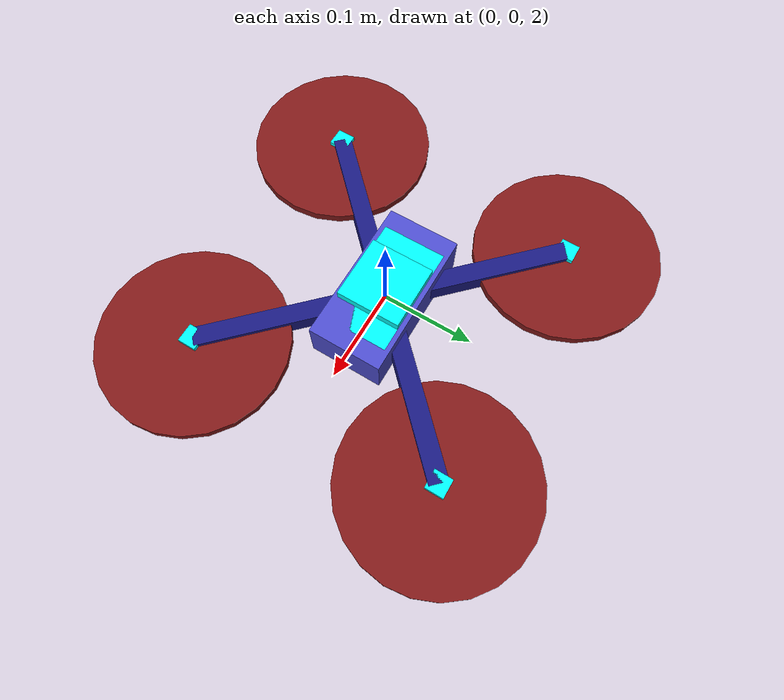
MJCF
<mujoco model="Quadrotor">
  <compiler angle="degree" coordinate="local" inertiafromgeom="false" />
  <visual>
    <map fogstart="3.0" fogend="5.0" force="0.1" znear="0.1" />
  </visual>
  <asset>
    <texture type="skybox" builtin="gradient" rgb1="1.0 1.0 1.0" rgb2="0.6 0.8 1.0" width="256" height="256" />
  </asset>
  <worldbody>
    <geom name="ground" type="plane" size="5.0 5.0 0.02" friction="1.0" pos="0.0 0.0 0.0" rgba="0.8 0.9 0.8 1.0" />
    <light directional="true" diffuse=".9 .9 .9" specular=".3 .3 .3" pos="0 0 4.0" dir="0 0.15 -1" />
    <body name="quadrotor" pos="0.0 0.0 2.0" quat="1 0 0 0">
      <geom name="quadrotor_geom" type="box" pos="0.0 0.0 0.0" quat="1 0 0 0" size="0.08 0.04 0.025" mass="0.75" density="1000" rgba="0.3 0.3 0.8 1.0" />
      <joint name="quadrotor_root_joint" type="free" />
      <inertial pos="0. 0. 0." mass="0.75" diaginertia="0.0053 0.0049 0.0098" />
      <geom name="quadrotor_rotor_arm_geom_0" type="box" pos="0.0 0.0 0.0" quat="0.92388 0 0 0.382683" size="0.2 0.01 0.01" mass="0.01" density="1000" rgba="0.1 0.1 0.5 1.0" />
      <geom name="quadrotor_rotor_prop_geom_0" type="cylinder" size="0.1 0.005" pos="0.1414213562373095 0.14142135623730953 0.0" mass="0.05" density="1000" rgba="0.5 0.1 0.1 1.0" />
      <geom name="quadrotor_rotor_arm_geom_1" type="box" pos="0.0 0.0 0.0" quat="0.382683 0 0 0.92388" size="0.2 0.01 0.01" mass="0.01" density="1000" rgba="0.1 0.1 0.5 1.0" />
      <geom name="quadrotor_rotor_prop_geom_1" type="cylinder" size="0.1 0.005" pos="-0.1414213562373095 0.14142135623730953 0.0" mass="0.05" density="1000" rgba="0.5 0.1 0.1 1.0" />
      <geom name="quadrotor_rotor_arm_geom_2" type="box" pos="0.0 0.0 0.0" quat="-0.382683 0 0 0.92388" size="0.2 0.01 0.01" mass="0.01" density="1000" rgba="0.1 0.1 0.5 1.0" />
      <geom name="quadrotor_rotor_prop_geom_2" type="cylinder" size="0.1 0.005" pos="-0.1414213562373095 -0.1414213562373095 0.0" mass="0.05" density="1000" rgba="0.5 0.1 0.1 1.0" />
      <geom name="quadrotor_rotor_arm_geom_3" type="box" pos="0.0 0.0 0.0" quat="-0.92388 0 0 0.382683" size="0.2 0.01 0.01" mass="0.01" density="1000" rgba="0.1 0.1 0.5 1.0" />
      <geom name="quadrotor_rotor_prop_geom_3" type="cylinder" size="0.1 0.005" pos="0.14142135623730948 -0.14142135623730956 0.0" mass="0.05" density="1000" rgba="0.5 0.1 0.1 1.0" />
      <site name="site0" type="box" pos="0.1414213562373095 0.14142135623730953 0.0" quat="1 0 0 0" size="0.01 0.01 0.01" rgba="0.0 1 1 1.0" />
      <site name="site1" type="box" pos="-0.1414213562373095 0.14142135623730953 0.0" quat="1 0 0 0" size="0.01 0.01 0.01" rgba="0.0 1 1 1.0" />
      <site name="site2" type="box" pos="-0.1414213562373095 -0.1414213562373095 0.0" quat="1 0 0 0" size="0.01 0.01 0.01" rgba="0.0 1 1 1.0" />
      <site name="site3" type="box" pos="0.14142135623730948 -0.14142135623730956 0.0" quat="1 0 0 0" size="0.01 0.01 0.01" rgba="0.0 1 1 1.0" />
      <site name="quadrotor_thrust" type="box" pos="0.0 0.0 0.0" quat="1 0 0 0" size="0.035 0.035 0.035" rgba="0.0 1 1 1.0" />
      <site name="quadrotor_Mx" type="box" pos="0.0 0.0 0.0" quat="1 0 0 0" size="0.06 0.035 0.025" rgba="0.0 1 1 1.0" />
      <site name="quadrotor_My" type="box" pos="0.0 0.0 0.0" quat="1 0 0 0" size="0.06 0.035 0.025" rgba="0.0 1 1 1.0" />
      <site name="quadrotor_Mz" type="box" pos="0.0 0.0 0.0" quat="1 0 0 0" size="0.06 0.035 0.025" rgba="0.0 1 1 1.0" />
    </body>
  </worldbody>
  <actuator>
    <motor ctrllimited="true" site="site0" ctrlrange="0.0 10.0" gear="0. 0. 1. 0. 0. -.024994577607878814" /> # each propeller can generate a force of 10N
    <motor ctrllimited="true" site="site1" ctrlrange="0.0 10.0" gear="0. 0. 1. 0. 0. .024994577607878814" />
    <motor ctrllimited="true" site="site2" ctrlrange="0.0 10.0" gear="0. 0. 1. 0. 0. -.024994577607878814" />
    <motor ctrllimited="true" site="site3" ctrlrange="0.0 10.0" gear="0. 0. 1. 0. 0. .024994577607878814" />
    <motor ctrllimited="true" site="quadrotor_thrust" ctrlrange="0.0 40.0" gear="0.0 0.0 1.0 0.0 0.0 0.0"/>
    <motor ctrllimited="true" site="quadrotor_Mx" ctrlrange="-3.0 3.0" gear="0.0 0.0 0.0 1.0 0.0 0.0"/>
    <motor ctrllimited="true" site="quadrotor_My" ctrlrange="-3.0 3.0" gear="0.0 0.0 0.0 0.0 1.0 0.0"/>
    <motor ctrllimited="true" site="quadrotor_Mz" ctrlrange="-3.0 3.0" gear="0.0 0.0 0.0 0.0 0.0 1.0"/>
  </actuator>
</mujoco>
